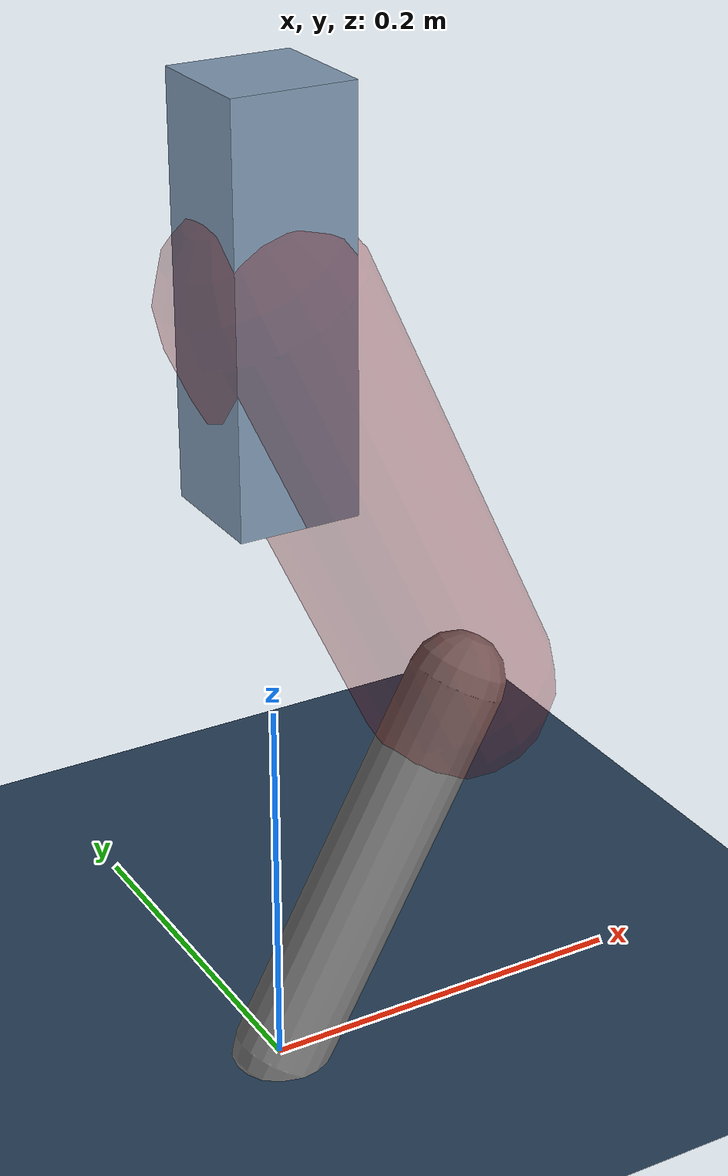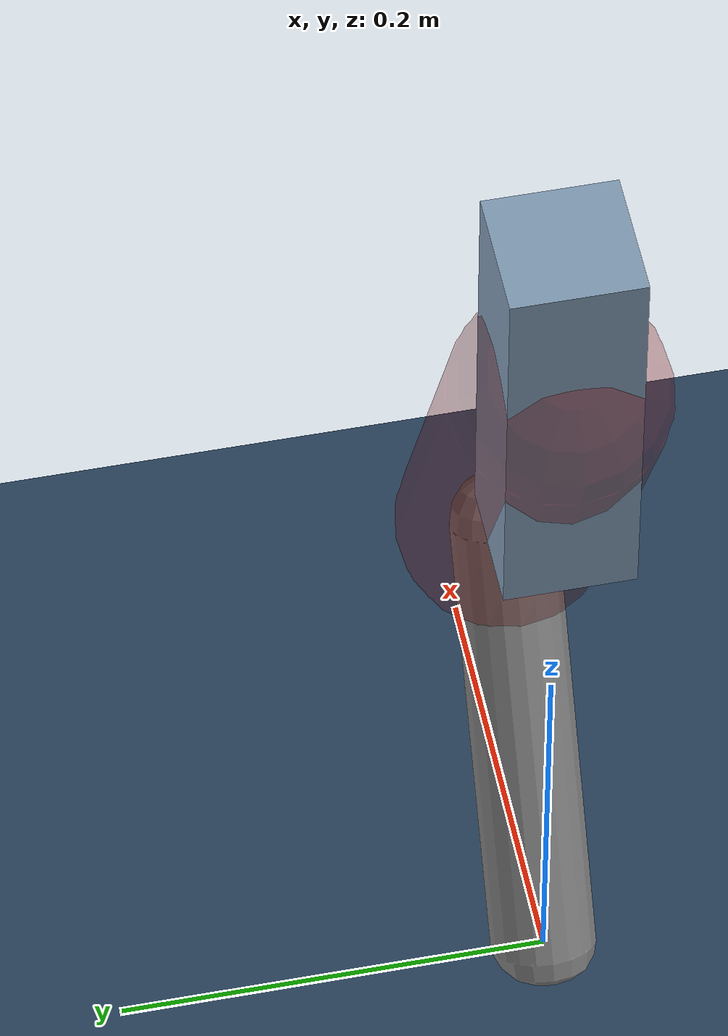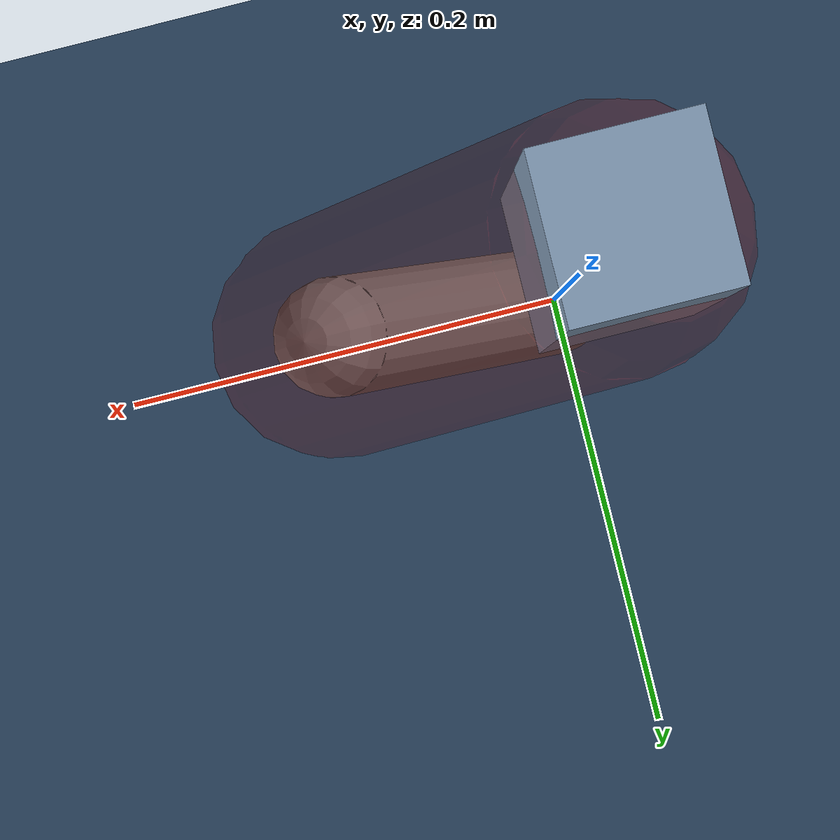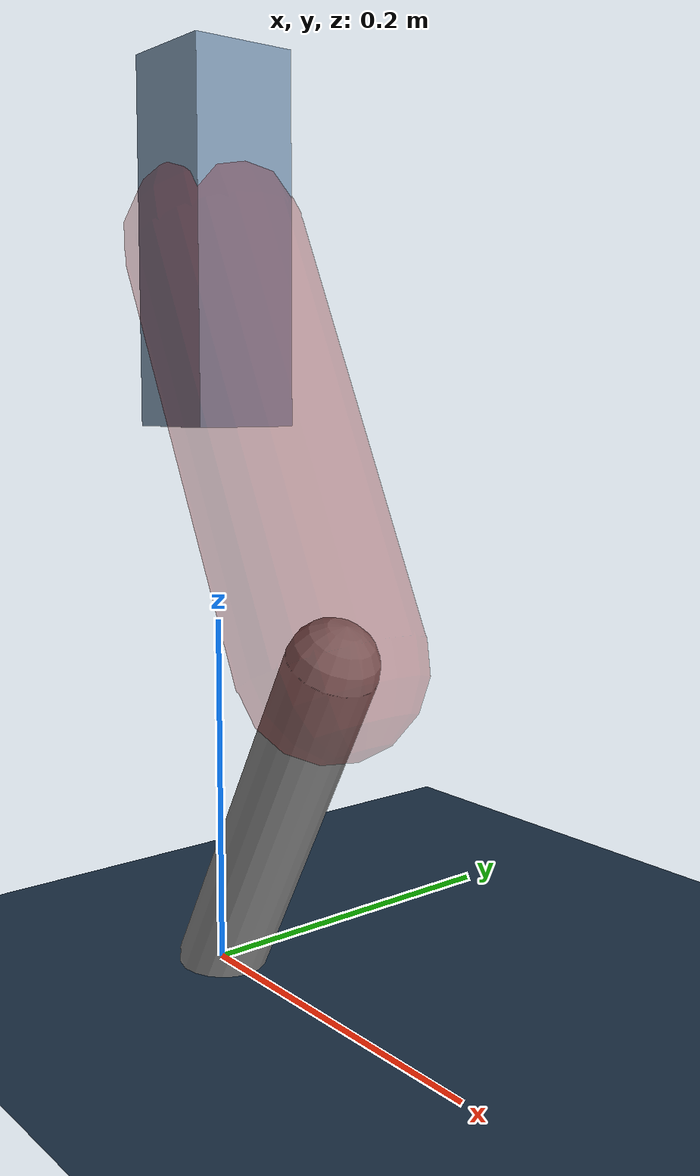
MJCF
<mujoco model="Hopper2D">
	<compiler inertiafromgeom="true" angle="radian" />
	<option timestep="0.001" integrator="implicit" cone="elliptic" solver="Newton" tolerance="1e-10" />

	<default>
		<geom contype="1" conaffinity="1" condim="3" friction="2 0.005 0.0001" solref="0.005 1" />
		<joint limited="true" damping="0.1" />
	</default>

	<asset>
		<texture name="skybox" type="skybox" builtin="gradient" rgb1=".4 .6 .8" rgb2="0 0 0" width="800" height="800" />
		<texture name="grid" type="2d" builtin="checker" rgb1=".1 .2 .3" rgb2=".2 .3 .4" width="300" height="300" mark="edge" markrgb=".2 .3 .4" />
		<material name="ground" texture="grid" texrepeat="1 1" texuniform="true" reflectance="0.1" />
		<material name="leg" rgba="0.5 0.6 0.7 1" />
	</asset>

	<worldbody>

		<geom name="floor" type="plane" size="5 5 0.25" material="ground" />

		<light directional="false" diffuse="0.8 0.8 0.8" specular="0.3 0.3 0.3" pos="0 0 2" dir="0 0 -1" />
		<light mode="targetbodycom" target="base" directional="false" diffuse="0.8 0.8 0.8" specular="0.3 0.3 0.3" pos="0 0 2" dir="0 0 -1" />

		<camera name="fixed" pos="0 -2 1" xyaxes="1 0 0 0 0 1" />
		<camera name="tracking" mode="trackcom" pos="0 -3 1" />

		<body name="root" pos="0 0 0.40948194230815993">
			<joint name="slide_x" type="slide" axis="1 0 0" range="-100 100" />
			<joint name="slide_z" type="slide" axis="0 0 1" range="0 10" />

			<body name="base" pos="0 0 0">
				<geom name="torso" type="box" size="0.03 0.03 0.1" mass="1.791" material="leg" />

				<body name="link1" pos="0 0 0" euler="0 1.1295704316111919 0">
					<joint type="hinge" axis="0 -1 0" pos="0 0 0" name="hinge1" limited="true" range="-3.14 3.14" stiffness="0" damping="0.1" />
					<geom name="thigh" type="capsule" fromto="0 0 0 0.24212206558426425 0 0" size="0.05" rgba="0.5 0 0 0.3" mass="0.8360173705190871" />

					<body name="link2" pos="0.24212206558426425 0 0" euler="0 0.9383957709377507 0">
						<joint type="hinge" axis="0 -1 0" pos="0 0 0" name="hinge2" limited="true" range="-3.14 3.14" stiffness="0" damping="0.1" />
						<geom name="shank" type="capsule" fromto="0 0 0 0.21679418894659264 0 0" size="0.025" mass="0.4150147700519334" />

					</body>
				</body>
			</body>
		</body>
	</worldbody>

	<actuator>
		<motor name="torque1" joint="hinge1" ctrlrange="-77.70545481755933 77.70545481755933" ctrllimited="true" gear="1" />
		<motor name="torque2" joint="hinge2" ctrlrange="-22.14290738091118 22.14290738091118" ctrllimited="true" gear="1" />
	</actuator>
</mujoco>
